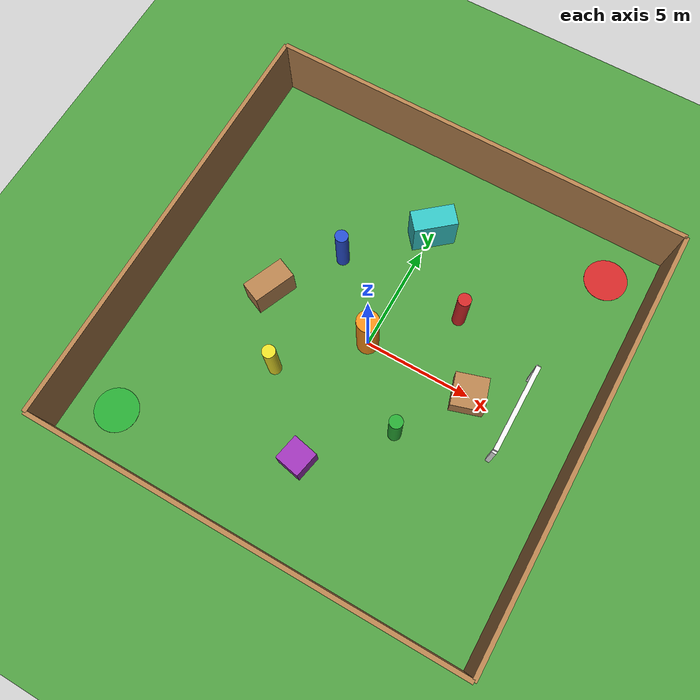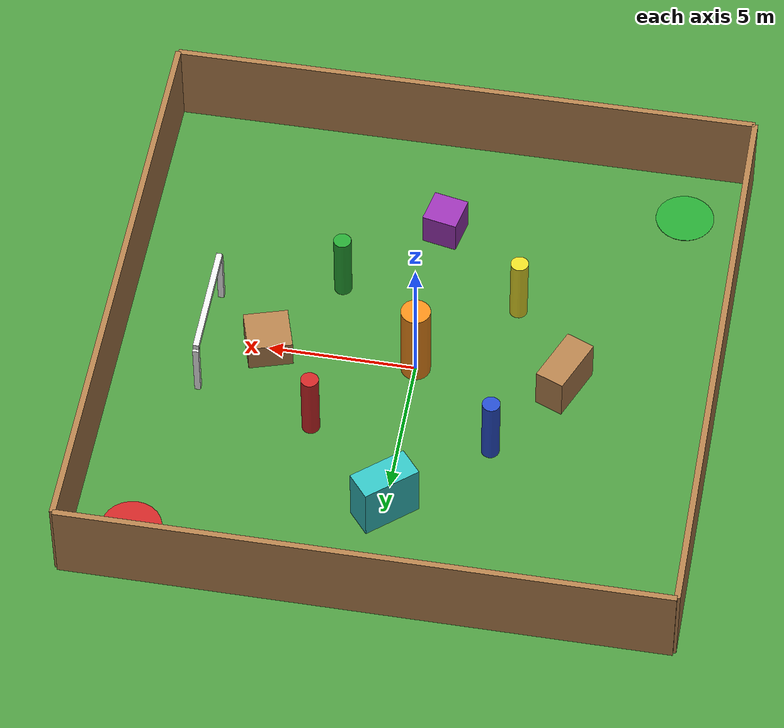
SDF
<sdf version="1.6">
 <world name="drl_training_world">
  <physics type="ode">
   <ode>
    <solver><type>quick</type><iters>50</iters><sor>1.3</sor></solver>
    <constraints>
     <cfm>0.0</cfm>
     <erp>0.2</erp>
     <contact_max_correcting_vel>100</contact_max_correcting_vel>
     <contact_surface_layer>0.001</contact_surface_layer>
    </constraints>
   </ode>
   <real_time_update_rate>400</real_time_update_rate>
   <max_step_size>0.004</max_step_size>
  </physics>
  <light name="sun" type="directional">
   <cast_shadows>false</cast_shadows>
   <pose>0 0 50 0 0 0</pose>
   <diffuse>0.8 0.8 0.8 1</diffuse>
   <specular>0.1 0.1 0.1 1</specular>
   <attenuation>
    <range>100</range>
    <constant>0.9</constant>
    <linear>0.01</linear>
    <quadratic>0.001</quadratic>
   </attenuation>
   <direction>-0.5 0.1 -0.9</direction>
  </light>
  <scene>
   <ambient>0.6 0.6 0.6 1</ambient>
   <background>0.7 0.7 0.7 1</background>
   <shadows>false</shadows>
   <grid>false</grid>
   <origin_visual>false</origin_visual>
  </scene>
  <model name="ground_plane">
   <static>true</static>
   <link name="link">
    <collision name="collision">
     <geometry><plane><normal>0 0 1</normal><size>100 100</size></plane></geometry>
     <surface><friction><ode><mu>100</mu><mu2>50</mu2></ode></friction></surface>
    </collision>
    <visual name="runway">
     <pose>0 0 0.005 0 0 0</pose>
     <cast_shadows>false</cast_shadows>
     <geometry><plane><normal>0 0 1</normal><size>100 100</size></plane></geometry>
     <material>
      <script><uri>file://media/materials/scripts/gazebo.material</uri><name>Gazebo/Grass</name></script>
     </material>
    </visual>
   </link>
  </model>
  <model name="wall_north">
   <static>true</static>
   <pose>0 10 1.5 0 0 0</pose>
   <link name="link">
    <collision name="collision"><geometry><box><size>20 0.2 3</size></box></geometry></collision>
    <visual name="visual">
     <geometry><box><size>20 0.2 3</size></box></geometry>
     <material>
      <script><uri>file://media/materials/scripts/gazebo.material</uri><name>Gazebo/WoodFloor</name></script>
     </material>
    </visual>
   </link>
  </model>
  <model name="wall_south">
   <static>true</static>
   <pose>0 -10 1.5 0 0 0</pose>
   <link name="link">
    <collision name="collision"><geometry><box><size>20 0.2 3</size></box></geometry></collision>
    <visual name="visual">
     <geometry><box><size>20 0.2 3</size></box></geometry>
     <material>
      <script><uri>file://media/materials/scripts/gazebo.material</uri><name>Gazebo/WoodFloor</name></script>
     </material>
    </visual>
   </link>
  </model>
  <model name="wall_east">
   <static>true</static>
   <pose>10 0 1.5 0 0 1.5708</pose>
   <link name="link">
    <collision name="collision"><geometry><box><size>20 0.2 3</size></box></geometry></collision>
    <visual name="visual">
     <geometry><box><size>20 0.2 3</size></box></geometry>
     <material>
      <script><uri>file://media/materials/scripts/gazebo.material</uri><name>Gazebo/WoodFloor</name></script>
     </material>
    </visual>
   </link>
  </model>
  <model name="wall_west">
   <static>true</static>
   <pose>-10 0 1.5 0 0 1.5708</pose>
   <link name="link">
    <collision name="collision"><geometry><box><size>20 0.2 3</size></box></geometry></collision>
    <visual name="visual">
     <geometry><box><size>20 0.2 3</size></box></geometry>
     <material>
      <script><uri>file://media/materials/scripts/gazebo.material</uri><name>Gazebo/WoodFloor</name></script>
     </material>
    </visual>
   </link>
  </model>
  <model name="pillar_1">
   <static>true</static>
   <pose>3 3 1.25 0 0 0</pose>
   <link name="link">
    <collision name="collision">
     <geometry><cylinder><radius>0.3</radius><length>2.5</length></cylinder></geometry>
    </collision>
    <visual name="visual">
     <geometry><cylinder><radius>0.3</radius><length>2.5</length></cylinder></geometry>
     <material>
      <script><uri>file://media/materials/scripts/gazebo.material</uri><name>Gazebo/Red</name></script>
     </material>
    </visual>
   </link>
  </model>
  <model name="pillar_2">
   <static>true</static>
   <pose>-3 3 1.25 0 0 0</pose>
   <link name="link">
    <collision name="collision">
     <geometry><cylinder><radius>0.3</radius><length>2.5</length></cylinder></geometry>
    </collision>
    <visual name="visual">
     <geometry><cylinder><radius>0.3</radius><length>2.5</length></cylinder></geometry>
     <material>
      <script><uri>file://media/materials/scripts/gazebo.material</uri><name>Gazebo/Blue</name></script>
     </material>
    </visual>
   </link>
  </model>
  <model name="pillar_3">
   <static>true</static>
   <pose>3 -3 1.25 0 0 0</pose>
   <link name="link">
    <collision name="collision">
     <geometry><cylinder><radius>0.3</radius><length>2.5</length></cylinder></geometry>
    </collision>
    <visual name="visual">
     <geometry><cylinder><radius>0.3</radius><length>2.5</length></cylinder></geometry>
     <material>
      <script><uri>file://media/materials/scripts/gazebo.material</uri><name>Gazebo/Green</name></script>
     </material>
    </visual>
   </link>
  </model>
  <model name="pillar_4">
   <static>true</static>
   <pose>-3 -3 1.25 0 0 0</pose>
   <link name="link">
    <collision name="collision">
     <geometry><cylinder><radius>0.3</radius><length>2.5</length></cylinder></geometry>
    </collision>
    <visual name="visual">
     <geometry><cylinder><radius>0.3</radius><length>2.5</length></cylinder></geometry>
     <material>
      <script><uri>file://media/materials/scripts/gazebo.material</uri><name>Gazebo/Yellow</name></script>
     </material>
    </visual>
   </link>
  </model>
  <model name="pillar_center">
   <static>true</static>
   <pose>0 0 1.5 0 0 0</pose>
   <link name="link">
    <collision name="collision">
     <geometry><cylinder><radius>0.5</radius><length>3</length></cylinder></geometry>
    </collision>
    <visual name="visual">
     <geometry><cylinder><radius>0.5</radius><length>3</length></cylinder></geometry>
     <material>
      <script><uri>file://media/materials/scripts/gazebo.material</uri><name>Gazebo/Orange</name></script>
     </material>
    </visual>
   </link>
  </model>
  <model name="box_1">
   <static>true</static>
   <pose>5 0 0.5 0 0 0.3</pose>
   <link name="link">
    <collision name="collision"><geometry><box><size>1.5 1.5 1</size></box></geometry></collision>
    <visual name="visual">
     <geometry><box><size>1.5 1.5 1</size></box></geometry>
     <material>
      <script><uri>file://media/materials/scripts/gazebo.material</uri><name>Gazebo/Wood</name></script>
     </material>
    </visual>
   </link>
  </model>
  <model name="box_2">
   <static>true</static>
   <pose>-5 0 0.75 0 0 -0.4</pose>
   <link name="link">
    <collision name="collision"><geometry><box><size>1 2 1.5</size></box></geometry></collision>
    <visual name="visual">
     <geometry><box><size>1 2 1.5</size></box></geometry>
     <material>
      <script><uri>file://media/materials/scripts/gazebo.material</uri><name>Gazebo/Wood</name></script>
     </material>
    </visual>
   </link>
  </model>
  <model name="box_3">
   <static>true</static>
   <pose>0 6 1 0 0 0.7</pose>
   <link name="link">
    <collision name="collision"><geometry><box><size>2 1 2</size></box></geometry></collision>
    <visual name="visual">
     <geometry><box><size>2 1 2</size></box></geometry>
     <material>
      <script><uri>file://media/materials/scripts/gazebo.material</uri><name>Gazebo/Turquoise</name></script>
     </material>
    </visual>
   </link>
  </model>
  <model name="box_4">
   <static>true</static>
   <pose>0 -6 0.6 0 0 -0.2</pose>
   <link name="link">
    <collision name="collision"><geometry><box><size>1.2 1.2 1.2</size></box></geometry></collision>
    <visual name="visual">
     <geometry><box><size>1.2 1.2 1.2</size></box></geometry>
     <material>
      <script><uri>file://media/materials/scripts/gazebo.material</uri><name>Gazebo/Purple</name></script>
     </material>
    </visual>
   </link>
  </model>
  <model name="gate1_left">
   <static>true</static>
   <pose>7 -2 1 0 0 0</pose>
   <link name="link">
    <collision name="collision"><geometry><box><size>0.2 0.2 2</size></box></geometry></collision>
    <visual name="visual">
     <geometry><box><size>0.2 0.2 2</size></box></geometry>
     <material>
      <script><uri>file://media/materials/scripts/gazebo.material</uri><name>Gazebo/White</name></script>
     </material>
    </visual>
   </link>
  </model>
  <model name="gate1_right">
   <static>true</static>
   <pose>7 2 1 0 0 0</pose>
   <link name="link">
    <collision name="collision"><geometry><box><size>0.2 0.2 2</size></box></geometry></collision>
    <visual name="visual">
     <geometry><box><size>0.2 0.2 2</size></box></geometry>
     <material>
      <script><uri>file://media/materials/scripts/gazebo.material</uri><name>Gazebo/White</name></script>
     </material>
    </visual>
   </link>
  </model>
  <model name="gate1_top">
   <static>true</static>
   <pose>7 0 2.1 0 0 0</pose>
   <link name="link">
    <collision name="collision"><geometry><box><size>0.2 4 0.2</size></box></geometry></collision>
    <visual name="visual">
     <geometry><box><size>0.2 4 0.2</size></box></geometry>
     <material>
      <script><uri>file://media/materials/scripts/gazebo.material</uri><name>Gazebo/White</name></script>
     </material>
    </visual>
   </link>
  </model>
  <model name="landing_pad_start">
   <static>true</static>
   <pose>-8 -8 0.005 0 0 0</pose>
   <link name="link">
    <visual name="visual">
     <geometry><cylinder><radius>1</radius><length>0.01</length></cylinder></geometry>
     <material>
      <script><uri>file://media/materials/scripts/gazebo.material</uri><name>Gazebo/Green</name></script>
     </material>
    </visual>
   </link>
  </model>
  <model name="landing_pad_goal">
   <static>true</static>
   <pose>8 8 0.005 0 0 0</pose>
   <link name="link">
    <visual name="visual">
     <geometry><cylinder><radius>1</radius><length>0.01</length></cylinder></geometry>
     <material>
      <script><uri>file://media/materials/scripts/gazebo.material</uri><name>Gazebo/Red</name></script>
     </material>
    </visual>
   </link>
  </model>
 </world>
</sdf>
